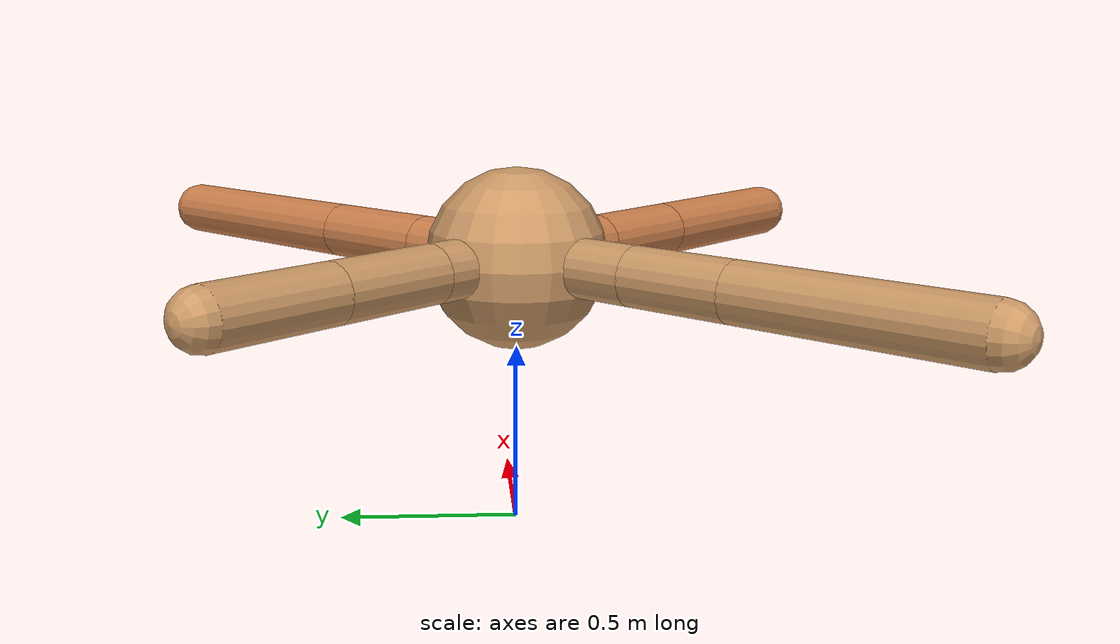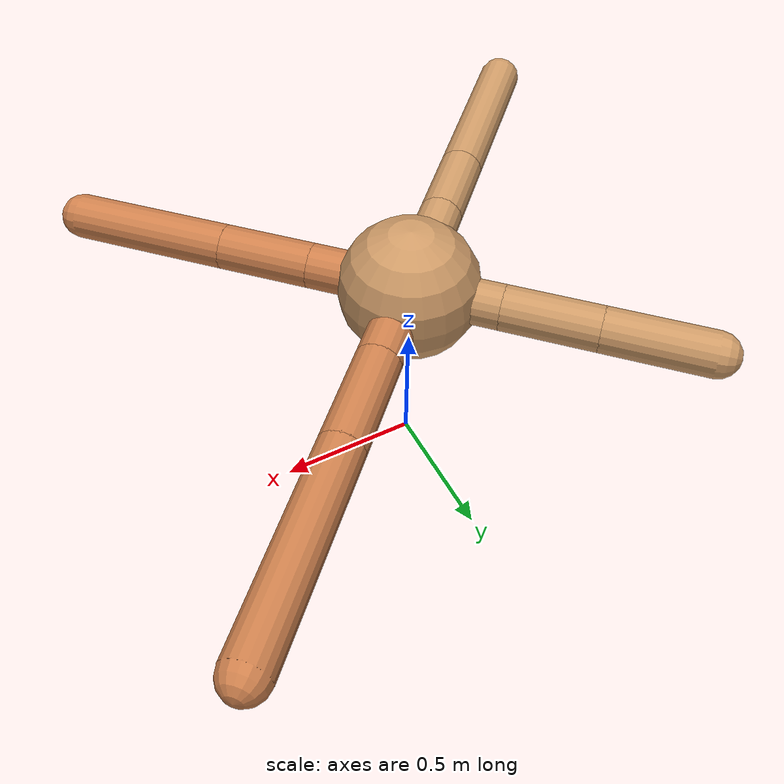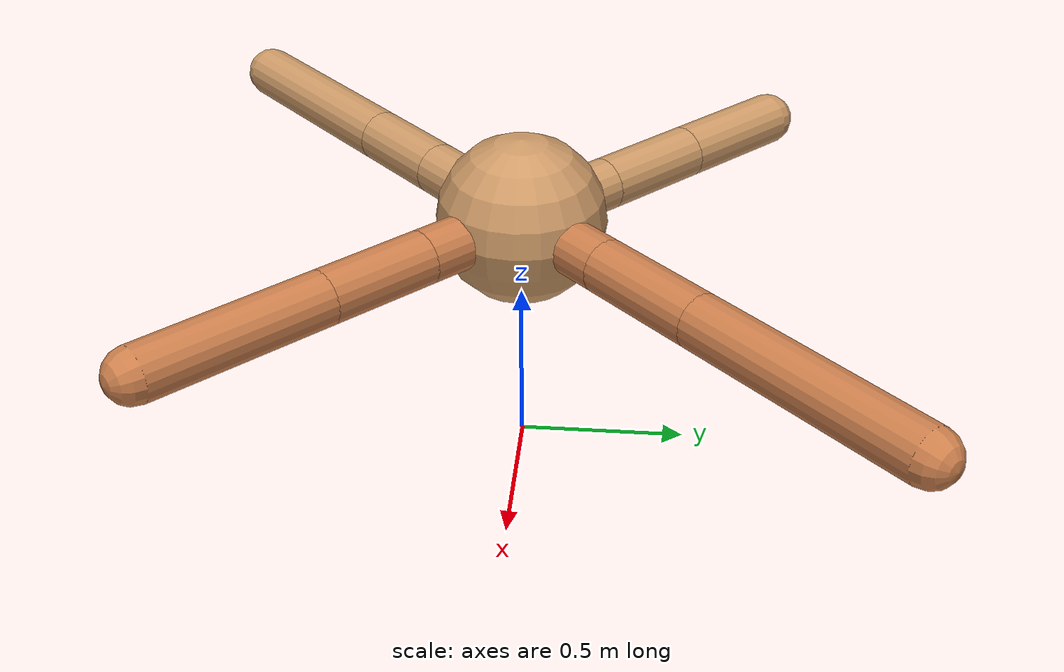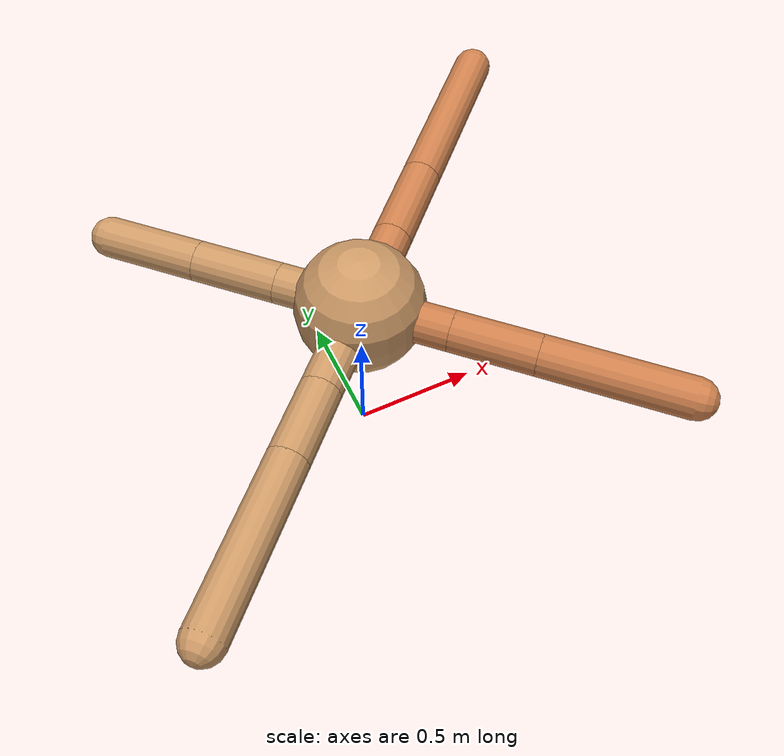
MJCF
<mujoco model="ant">
  <compiler angle="degree" coordinate="local" inertiafromgeom="true" />
  <option integrator="RK4" timestep="0.01" />
  <custom>
    <numeric data="0.0 0.0 0.55 1.0 0.0 0.0 0.0 0.0 1.0 0.0 -1.0 0.0 -1.0 0.0 1.0" name="init_qpos" />
  </custom>
  <default>
    <joint armature="1" damping="1" limited="true" />
    <geom conaffinity="0" condim="3" density="5.0" friction="1.5 0.1 0.1" margin="0.01" rgba="0.8 0.6 0.4 1" />
  </default>
  <worldbody>
    <body name="torso" pos="0 0 0.75">
      <geom name="torso_geom" pos="0 0 0" size="0.25" type="sphere" />

      <body name="front_left_leg" pos="0 0 0">
        <geom fromto="0.0 0.0 0.0 0.2528137656499189 0.2528137656499189 0.0" name="aux_1_geom" size="0.08" type="capsule" rgba=".8 .5 .3 1" />
        <body name="aux_1" pos="0.2528137656499189 0.2528137656499189 0.0">
          <joint axis="0 0 1" name="hip_1" pos="0.0 0.0 0.0" range="-40 40" type="hinge" />
          <geom fromto="0.0 0.0 0.0 0.25590498167128833 0.25590498167128833 0.0" name="left_leg_geom" size="0.08" type="capsule" rgba=".8 .5 .3 1" />
          <body pos="0.25590498167128833 0.25590498167128833 0.0" name="front_left_foot">
            <joint axis="-1 1 0" name="ankle_1" pos="0.0 0.0 0.0" range="30 100" type="hinge" />
            <geom fromto="0.0 0.0 0.0 0.5267315387175673 0.5267315387175673 0.0" name="left_ankle_geom" size="0.08" type="capsule" rgba=".8 .5 .3 1" />
          </body>
        </body>
      </body>
      <body name="front_right_leg" pos="0 0 0">
        <geom fromto="0.0 0.0 0.0 -0.23015815252942345 0.23015815252942345 0.0" name="aux_2_geom" size="0.08" type="capsule" />
        <body name="aux_2" pos="-0.23015815252942345 0.23015815252942345 0.0">
          <joint axis="0 0 1" name="hip_2" pos="0.0 0.0 0.0" range="-40 40" type="hinge" />
          <geom fromto="0.0 0.0 0.0 -0.2363050744201164 0.2363050744201164 0.0" name="right_leg_geom" size="0.08" type="capsule" />
          <body pos="-0.2363050744201164 0.2363050744201164 0.0" name="front_right_foot">
            <joint axis="1 1 0" name="ankle_2" pos="0.0 0.0 0.0" range="-100 -30" type="hinge" />
            <geom fromto="0.0 0.0 0.0 -0.26545379462047053 0.26545379462047053 0.0" name="right_ankle_geom" size="0.08" type="capsule" />
          </body>
        </body>
      </body>
      <body name="left_back_leg" pos="0 0 0">
        <geom fromto="0.0 0.0 0.0 -0.2829896484319381 -0.2829896484319381 0.0" name="aux_3_geom" size="0.08" type="capsule" />
        <body name="aux_3" pos="-0.2829896484319381 -0.2829896484319381 0.0">
          <joint axis="0 0 1" name="hip_3" pos="0.0 0.0 0.0" range="-40 40" type="hinge" />
          <geom fromto="0.0 0.0 0.0 -0.20916862068563458 -0.20916862068563458 0.0" name="back_leg_geom" size="0.08" type="capsule" />
          <body pos="-0.20916862068563458 -0.20916862068563458 0.0" name="left_back_foot">
            <joint axis="-1 1 0" name="ankle_3" pos="0.0 0.0 0.0" range="-100 -30" type="hinge" />
            <geom fromto="0.0 0.0 0.0 -0.46200043580515227 -0.46200043580515227 0.0" name="third_ankle_geom" size="0.08" type="capsule" />
          </body>
        </body>
      </body>
      <body name="right_back_leg" pos="0 0 0">
        <geom fromto="0.0 0.0 0.0 0.2526115377467337 -0.2526115377467337 0.0" name="aux_4_geom" size="0.08" type="capsule" rgba=".8 .5 .3 1" />
        <body name="aux_4" pos="0.2526115377467337 -0.2526115377467337 0.0">
          <joint axis="0 0 1" name="hip_4" pos="0.0 0.0 0.0" range="-40 40" type="hinge" />
          <geom fromto="0.0 0.0 0.0 0.231601602343454 -0.231601602343454 0.0" name="rightback_leg_geom" size="0.08" type="capsule" rgba=".8 .5 .3 1" />
          <body pos="0.231601602343454 -0.231601602343454 0.0" name="right_back_foot">
            <joint axis="1 1 0" name="ankle_4" pos="0.0 0.0 0.0" range="30 100" type="hinge" />
            <geom fromto="0.0 0.0 0.0 0.39717176989121605 -0.39717176989121605 0.0" name="fourth_ankle_geom" size="0.08" type="capsule" rgba=".8 .5 .3 1" />
          </body>
        </body>
      </body>
    </body>
  </worldbody>
  <actuator>
    <motor ctrllimited="true" ctrlrange="-1.0 1.0" joint="hip_4" gear="150" />
    <motor ctrllimited="true" ctrlrange="-1.0 1.0" joint="ankle_4" gear="150" />
    <motor ctrllimited="true" ctrlrange="-1.0 1.0" joint="hip_1" gear="150" />
    <motor ctrllimited="true" ctrlrange="-1.0 1.0" joint="ankle_1" gear="150" />
    <motor ctrllimited="true" ctrlrange="-1.0 1.0" joint="hip_2" gear="150" />
    <motor ctrllimited="true" ctrlrange="-1.0 1.0" joint="ankle_2" gear="150" />
    <motor ctrllimited="true" ctrlrange="-1.0 1.0" joint="hip_3" gear="150" />
    <motor ctrllimited="true" ctrlrange="-1.0 1.0" joint="ankle_3" gear="150" />
  </actuator>
</mujoco>
